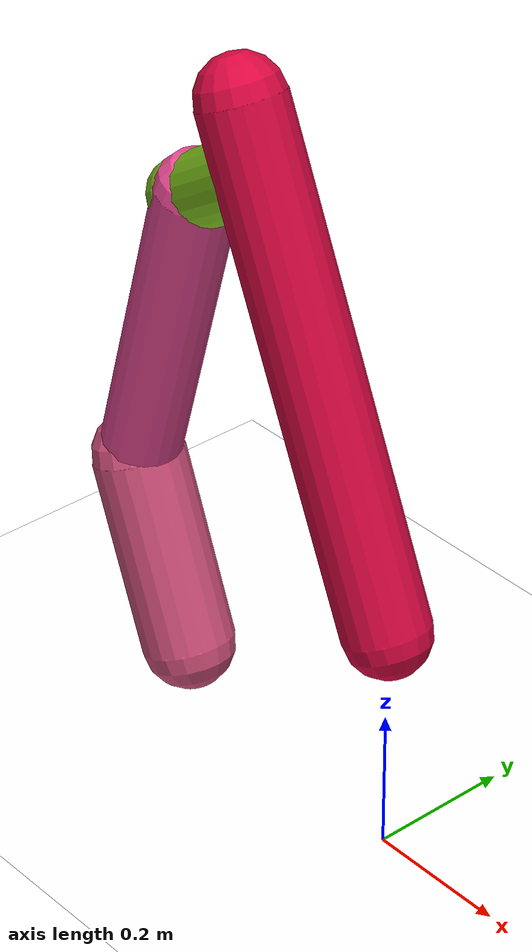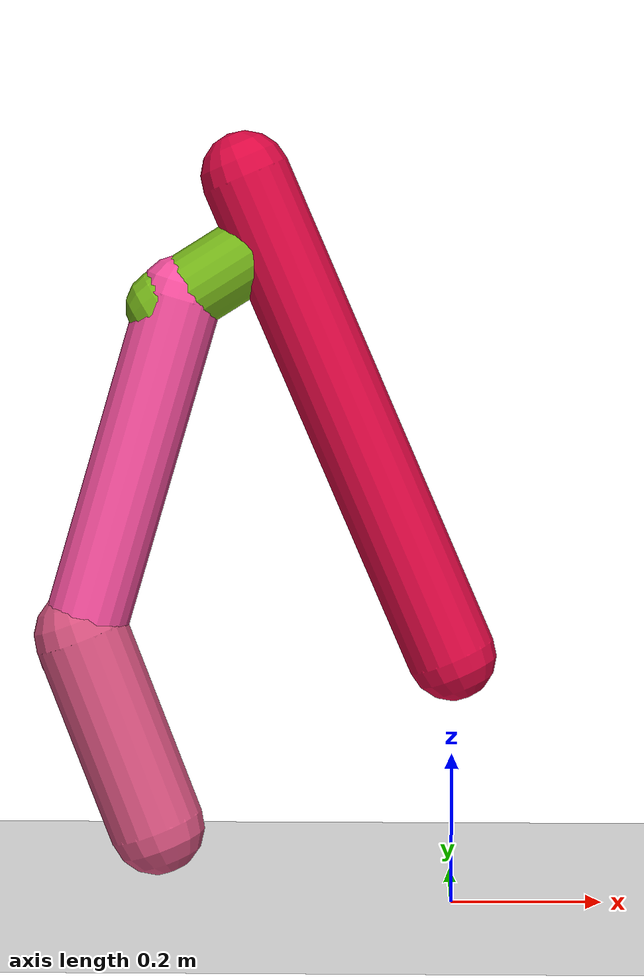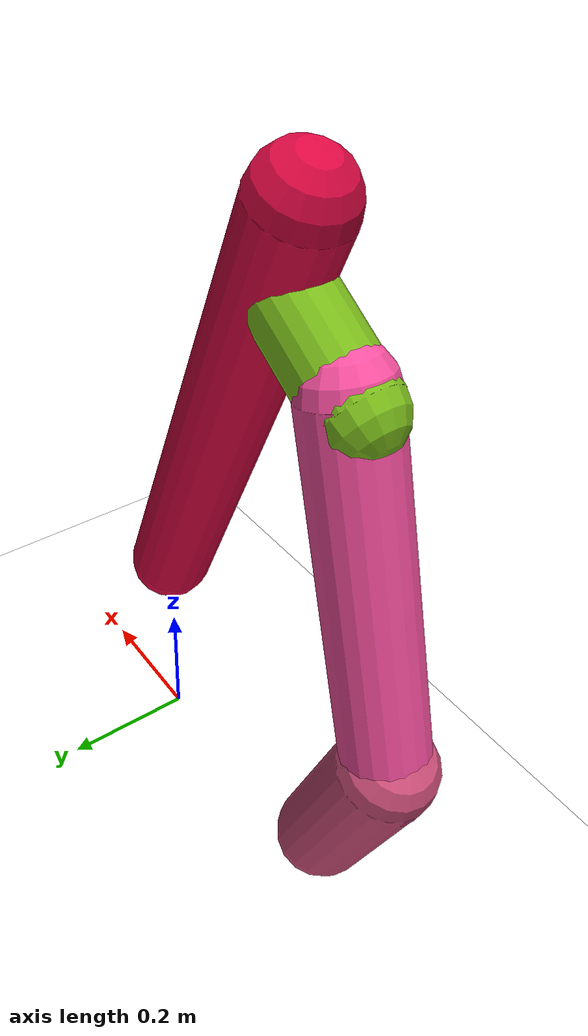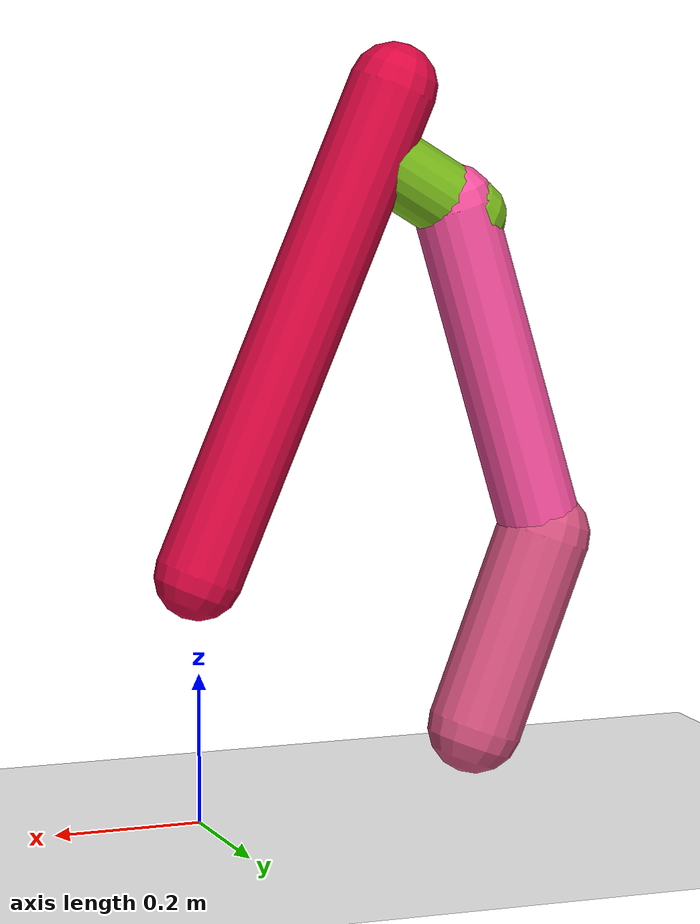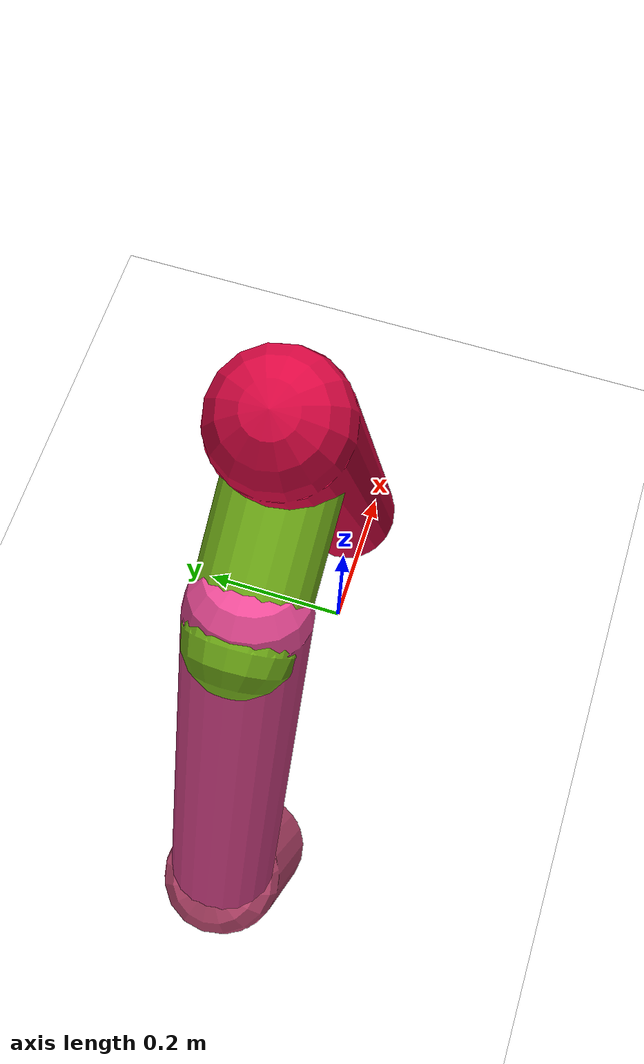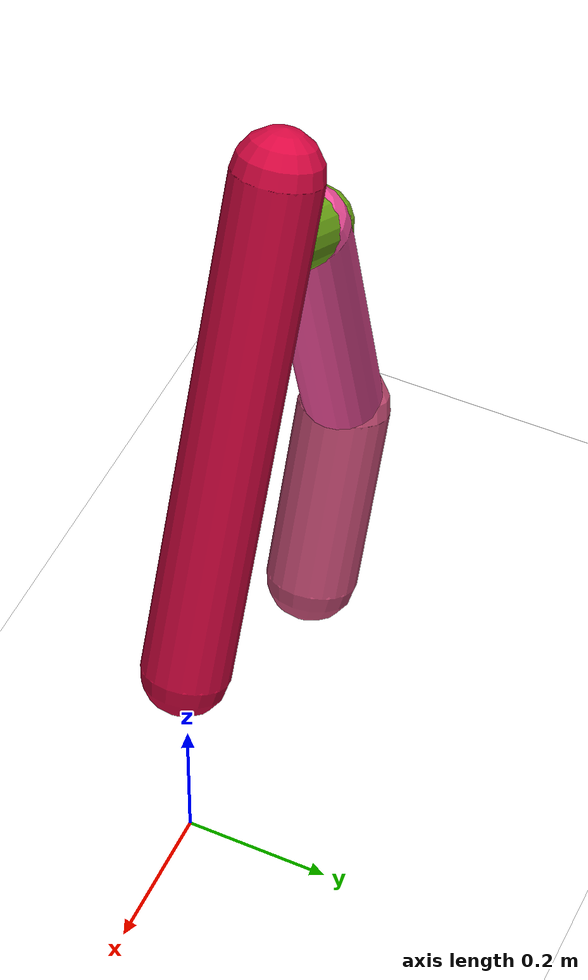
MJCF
<mujoco model="morphology">
  <option timestep="0.01"/>
  <default>
    <default class="/"/>
    <default class="0/"/>
    <default class="0/1/"/>
    <default class="0/1/2/"/>
    <default class="0/1/2/3/"/>
  </default>
  <asset>
    <texture name="texplane" type="2d" builtin="checker" rgb1="0.10000000000000001 0.20000000000000001 0.29999999999999999" rgb2="0.20000000000000001 0.29999999999999999 0.40000000000000002" width="300" height="300"/>
    <material name="MatPlane" class="/" texture="texplane" texrepeat="20 20" specular="1" shininess="1" reflectance="0.5"/>
  </asset>
  <worldbody>
    <light name="//unnamed_light_0" class="/" directional="true" pos="0 0 1.5" dir="0 0 -1.3" cutoff="100" exponent="1" diffuse="1 1 1" specular="0.10000000000000001 0.10000000000000001 0.10000000000000001"/>
    <geom name="ground" class="/" type="plane" size="15 15 0.5" material="MatPlane" rgba="1 1 1 1"/>
    <site name="body" class="/" size="9.9999999999999995e-07 9.9999999999999995e-07 9.9999999999999995e-07" pos="0 0 0.33148983716964719"/>
    <body pos="0 0 0.33148983716964719" name="0/">
      <joint name="0/rootx/" class="/" type="slide" axis="1 0 0" limited="false" stiffness="0" armature="0" damping="0"/>
      <joint name="0/rootz/" class="/" type="slide" axis="0 0 1" limited="false" stiffness="0" armature="0" damping="0"/>
      <joint name="0/rooty/" class="/" type="hinge" axis="0 1 0" limited="false" stiffness="0" armature="0" damping="0"/>
      <geom name="0/geom" class="0/" type="capsule" contype="1" conaffinity="1" condim="3" size="0.059143706010650735" rgba="0.85447490490923739 0.027127704926495411 0.25598437573949084 1" friction="0.59999999999999998 0.10000000000000001 0.10000000000000001" fromto="0 0 0 -0.27208011507071483 0 0.63465422173747976"/>
      <site name="0/end0" class="0/" size="0.0050000000000000001" pos="-0.27208011507071483 0 0.63465422173747976"/>
      <site name="0/attach1" class="0/" size="9.9999999999999995e-07 9.9999999999999995e-07 9.9999999999999995e-07" pos="-0.23669344013126944 0 0.55211124487298568"/>
      <body pos="-0.23669344013126944 0 0.55211124487298568" name="0/1/">
        <joint name="0/1/joint/" class="0/" type="hinge" axis="0 1 0" limited="true" range="-32.34069568248367 32.34069568248367"/>
        <geom name="0/1/geom" class="0/1/" type="capsule" contype="1" conaffinity="1" condim="3" size="0.05122784529630791" rgba="0.47404411803576652 0.72609298390733557 0.10086462006827823 1" friction="0.59999999999999998 0.10000000000000001 0.10000000000000001" fromto="0 0 0 -0.14258511602409563 0 -0.089073791863552909"/>
        <site name="0/1/end1" class="0/1/" size="0.0050000000000000001" pos="-0.14258511602409563 0 -0.089073791863552909"/>
        <site name="0/1/attach2" class="0/1/" size="9.9999999999999995e-07 9.9999999999999995e-07 9.9999999999999995e-07" pos="-0.12168594365863955 0 -0.076017951385178126"/>
        <body pos="-0.12168594365863955 0 -0.076017951385178126" name="0/1/2/">
          <joint name="0/1/2/joint/" class="0/1/" type="hinge" axis="0 1 0" limited="true" range="-46.898991984181535 46.898991984181535"/>
          <geom name="0/1/2/geom" class="0/1/2/" type="capsule" contype="1" conaffinity="1" condim="3" size="0.055599624969860977" rgba="0.96618479291256676 0.30875384917022441 0.61958599269085324 1" friction="0.59999999999999998 0.10000000000000001 0.10000000000000001" fromto="0 0 0 -0.13753390290623768 0 -0.46630355572186388"/>
          <site name="0/1/2/end2" class="0/1/2/" size="0.0050000000000000001" pos="-0.13753390290623768 0 -0.46630355572186388"/>
          <site name="0/1/2/attach3" class="0/1/2/" size="9.9999999999999995e-07 9.9999999999999995e-07 9.9999999999999995e-07" pos="-0.1328992594195971 0 -0.45058997025925235"/>
          <body pos="-0.1328992594195971 0 -0.45058997025925235" name="0/1/2/3/">
            <joint name="0/1/2/3/joint/" class="0/1/2/" type="hinge" axis="0 1 0" limited="true" range="-67.231106653258408 67.231106653258408"/>
            <geom name="0/1/2/3/geom" class="0/1/2/3/" type="capsule" contype="1" conaffinity="1" condim="3" size="0.064356805756500352" rgba="0.83271308203771155 0.31980895443680235 0.49178168290146451 1" friction="0.59999999999999998 0.10000000000000001 0.10000000000000001" fromto="0 0 0 0.097896833220438184 0 -0.25699316309090647"/>
            <site name="0/1/2/3/end3" class="0/1/2/3/" size="0.0050000000000000001" pos="0.097896833220438184 0 -0.25699316309090647"/>
          </body>
        </body>
      </body>
      <camera name="0/side" class="0/" mode="trackcom" pos="0.40000000000000002 -4 0.20000000000000001" quat="0.70699999999999996 0.70699999999999996 0 0"/>
    </body>
  </worldbody>
  <actuator>
    <motor name="0/1/motor" class="0/1/" ctrllimited="true" ctrlrange="-1 1" gear="51" joint="0/1/joint/"/>
    <motor name="0/1/2/motor" class="0/1/2/" ctrllimited="true" ctrlrange="-1 1" gear="62" joint="0/1/2/joint/"/>
    <motor name="0/1/2/3/motor" class="0/1/2/3/" ctrllimited="true" ctrlrange="-1 1" gear="80" joint="0/1/2/3/joint/"/>
  </actuator>
  <sensor>
    <subtreelinvel name="velocity" body="0/"/>
  </sensor>
</mujoco>
